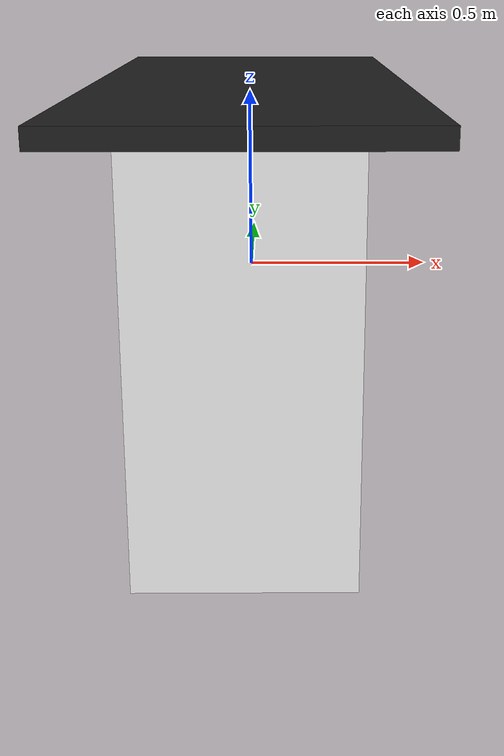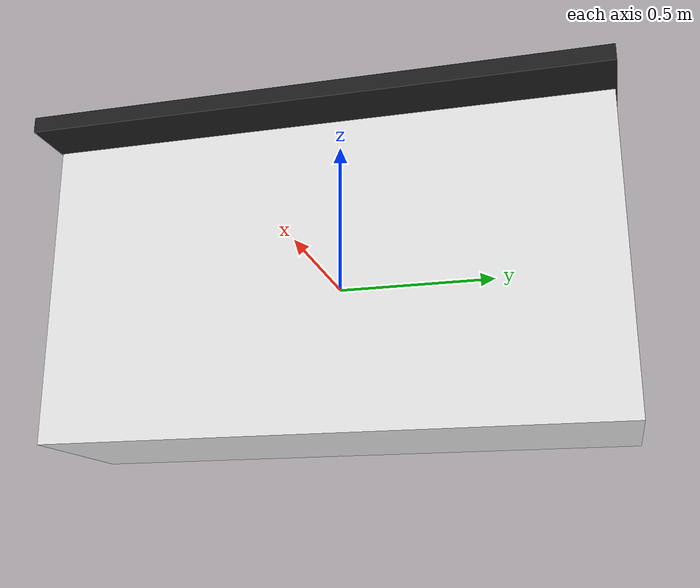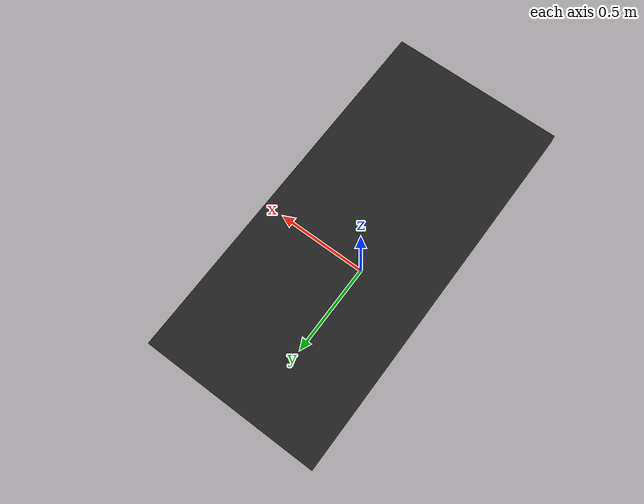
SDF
<?xml version="1.0"?>

<sdf version='1.7'>
  <model name="starbots_bartender_dispenser">
      <static>1</static>
      <link name='countertop'>
        <inertial>
          <mass>50.25</mass>
          <inertia>
            <ixx>0.00015</ixx>
            <ixy>0.000000</ixy>
            <ixz>0.000000</ixz>
            <iyy>0.00015</iyy>
            <iyz>0.000000</iyz>
            <izz>0.00015</izz>
          </inertia>
        </inertial>
        <collision name='countertop_c'>
          <geometry>
            <box>
              <size>0.5 1.8 1.0</size>
            </box>
          </geometry>
          <laser_retro>8000</laser_retro>
          <surface>
            <friction>
              <ode>
                <mu>30.0</mu>
                <mu2>30.0</mu2>
              </ode>
            </friction>
            <contact>
              <ode>
                <kp>1000000.0</kp>
                <kd>100.0</kd>
                <max_vel>1.0</max_vel>
                <min_depth>0.002</min_depth>
              </ode>
            </contact>
          </surface>
        </collision>
        <visual name='countertop_v'>
          <geometry>
            <box>
              <size>0.5 1.8 1.0</size>
            </box>
          </geometry>
          <material>
            <script>
              <uri>file://media/materials/scripts/gazebo.material</uri>
              <name>Gazebo/White</name>
            </script>
          </material>
        </visual>
        <collision name='top_c'>
          <pose>0 0 0.5 0 0 0</pose>

          <geometry>
            <box>
              <size>0.85 1.81 0.05</size>
            </box>
          </geometry>
          <laser_retro>8000</laser_retro>
          <surface>
            <friction>
              <ode>
                <mu>30.0</mu>
                <mu2>30.0</mu2>
              </ode>
            </friction>
            <contact>
              <ode>
                <kp>1000000.0</kp>
                <kd>100.0</kd>
                <max_vel>1.0</max_vel>
                <min_depth>0.002</min_depth>
              </ode>
            </contact>
          </surface>
        </collision>
        <visual name='top_v'>
          <pose>0 0 0.5 0 0 0</pose>

          <geometry>
            <box>
              <size>0.85 1.81 0.05</size>
            </box>
          </geometry>
          <material>
            <script>
              <uri>file://media/materials/scripts/gazebo.material</uri>
              <name>Gazebo/Black</name>
            </script>
          </material>
        </visual>

        <velocity_decay>
          <linear>0.000000</linear>
          <angular>0.000000</angular>
        </velocity_decay>
        <self_collide>0</self_collide>
        <kinematic>0</kinematic>
        <gravity>1</gravity>
      </link>

  </model>
</sdf>
